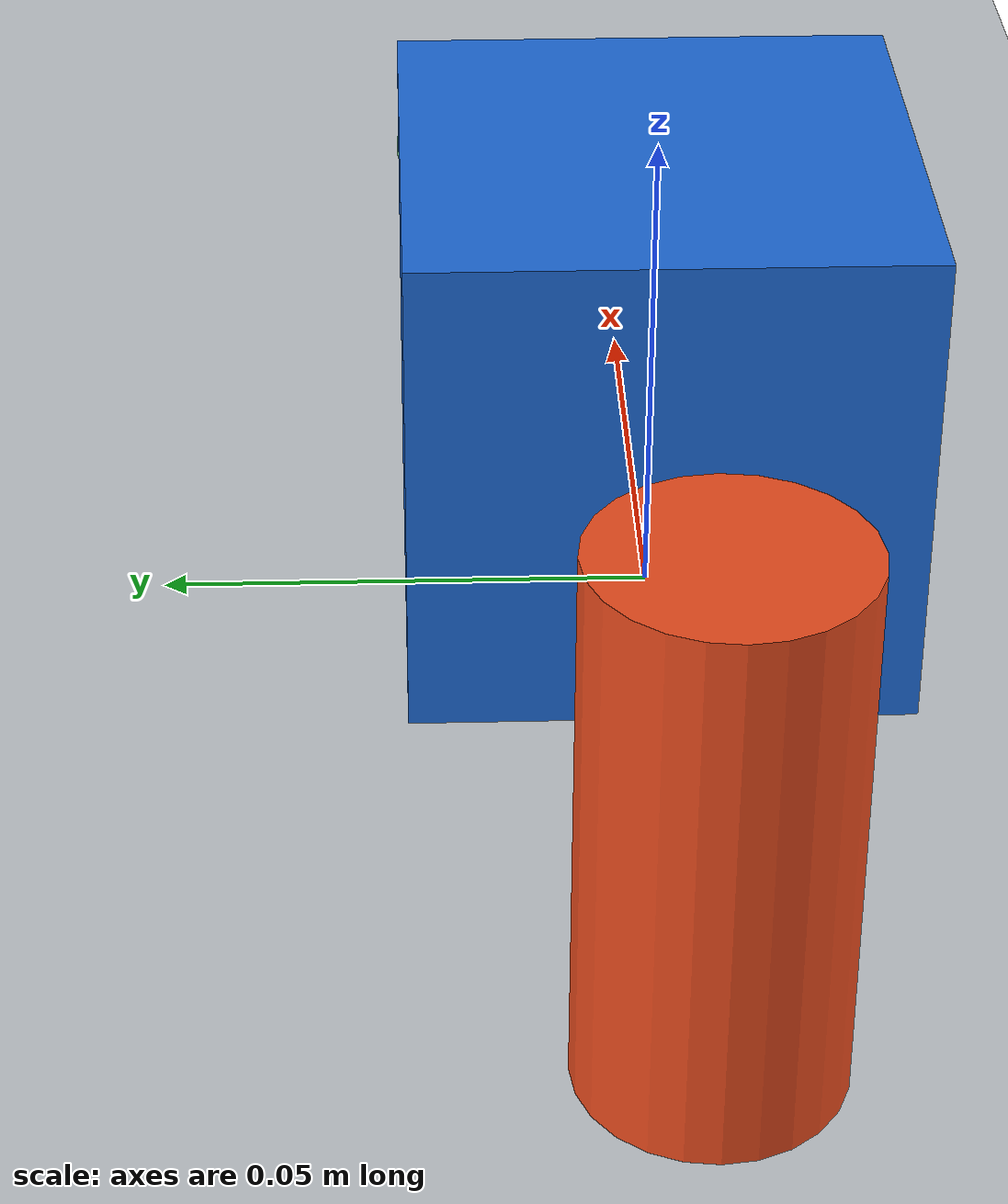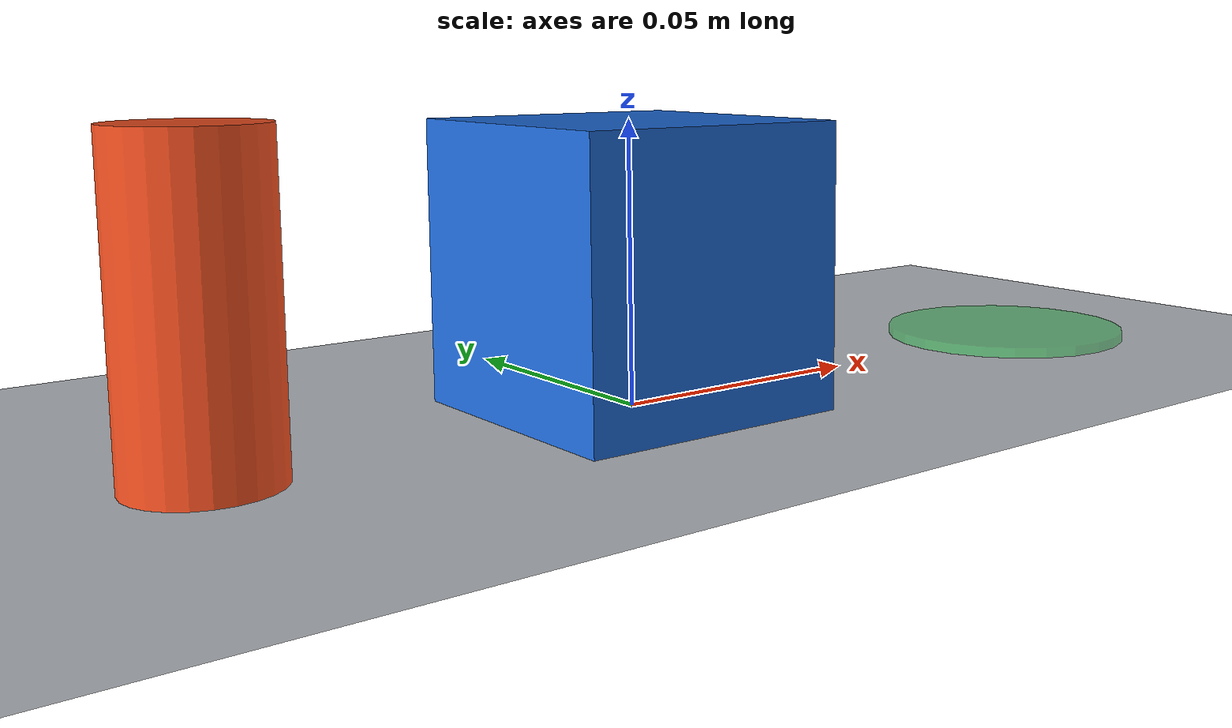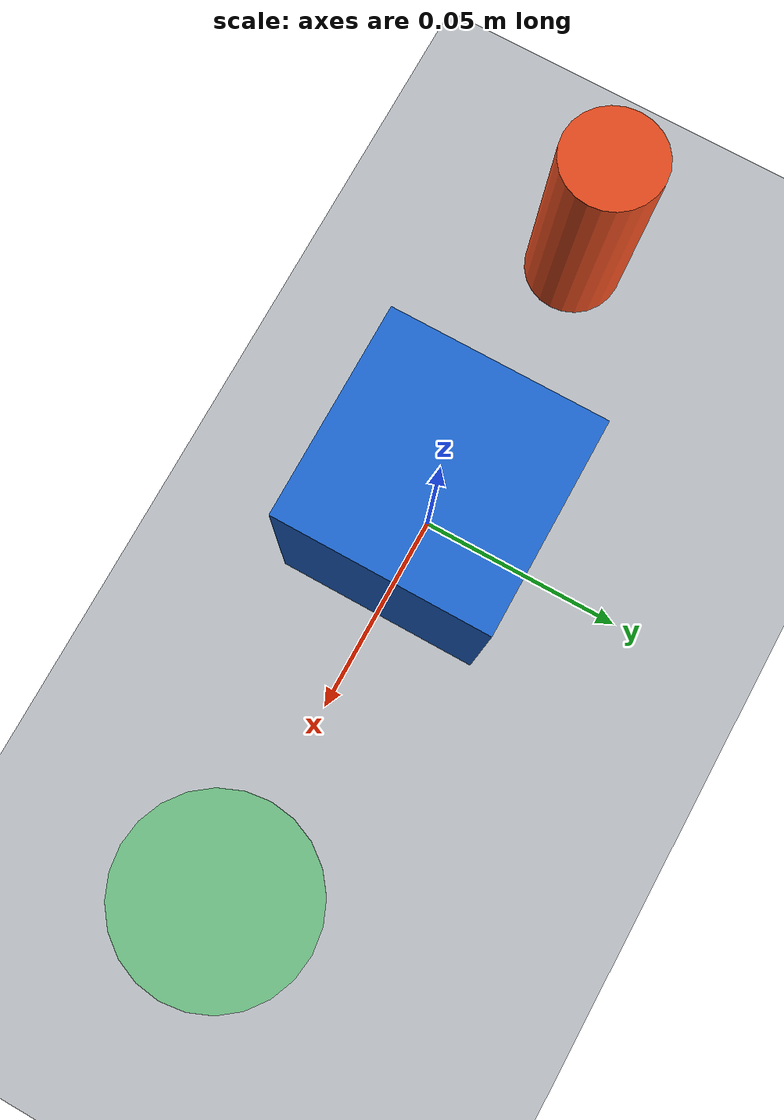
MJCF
<mujoco model="minimal_planar_push">
  <compiler angle="radian" coordinate="local"/>
  <option timestep="0.002" gravity="0 0 -9.81" integrator="RK4" iterations="50"/>
  <size nconmax="100" njmax="500"/>
  <visual>
    <global offwidth="640" offheight="480"/>
    <quality shadowsize="2048"/>
  </visual>
  <asset>
    <texture name="grid" type="2d" builtin="checker" rgb1="0.82 0.84 0.86" rgb2="0.68 0.70 0.72" width="512" height="512"/>
    <material name="table_mat" texture="grid" texrepeat="8 8" reflectance="0.05"/>
    <material name="cube_mat" rgba="0.12 0.42 0.85 1"/>
    <material name="pusher_mat" rgba="0.92 0.30 0.12 1"/>
    <material name="target_mat" rgba="0.10 0.80 0.25 0.45"/>
  </asset>
  <worldbody>
    <light pos="0 0 1.2" dir="0 0 -1" diffuse="0.9 0.9 0.9"/>
    <geom name="table" type="plane" size="0.40 0.35 0.02" material="table_mat" friction="0.40 0.005 0.0001"/>
    <site name="target" type="cylinder" size="0.025 0.001" pos="0.10 0 0.001" material="target_mat"/>
    <body name="cube" pos="0 0 0.025">
      <freejoint name="cube_free"/>
      <geom name="cube_geom" type="box" size="0.025 0.025 0.025" mass="0.60" material="cube_mat" friction="0.40 0.005 0.0001" condim="4"/>
    </body>
    <body name="pusher" mocap="true" pos="-0.075 0 0.026">
      <geom name="pusher_geom" type="cylinder" size="0.012 0.026" material="pusher_mat" friction="0.40 0.005 0.0001" condim="4"/>
    </body>
    <camera name="overview" pos="0.06 -0.42 0.42" xyaxes="1 0 0 0 0.70 0.72"/>
  </worldbody>
</mujoco>
